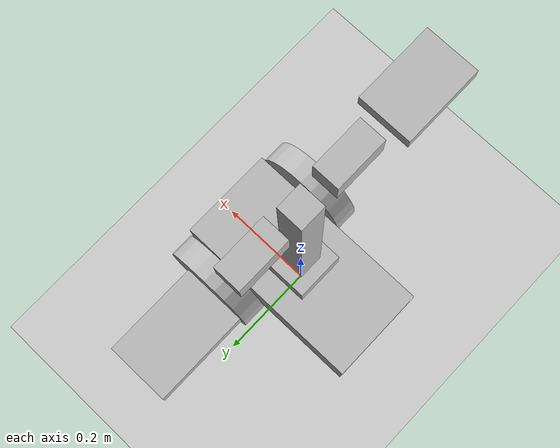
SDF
<?xml version="1.0"?>
<sdf version="1.5">
  <world name="default">
    <gui fullscreen='0'>
      <!-- KEYPUBLISHER SEE: https://github.com/osrf/car_demo/issues/25 -->
      <plugin name='keyboard' filename='libKeyboardGUIPlugin.so'/>
      <camera name='user_camera'>
        <pose frame=''>0.409475 -0.502666 0.529673 0 0.275643 2.35619</pose>
        <view_controller>orbit</view_controller>
        <projection_type>perspective</projection_type>
      </camera>
    </gui>

    <include>
      <uri>model://sun</uri>
    </include>

    <include>
      <uri>model://ground_plane</uri>
    </include>

    <include>
      <pose>0 0 0 0 0 0</pose>
      <uri>model://my_arm_robot</uri>
    </include>
  </world>
</sdf>

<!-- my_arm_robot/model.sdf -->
<sdf version="1.4">
  <model name="my_arm_robot">
    <static>0</static>
    <link name="chassis">
      <pose>0 0 .1 0 0 0</pose>
      <inertial>
        <mass>15</mass>
        <inertia>
          <ixx>6.6666666e-02</ixx>
          <ixy>0</ixy>
          <ixz>0</ixz>
          <iyy>0.226666666666</iyy>
          <iyz>0</iyz>
          <izz>0.26666666666</izz>
        </inertia>
      </inertial>
      <collision name="collision">
        <geometry>
          <box>
            <size>.4 .2 .1</size>
          </box>
        </geometry>
      </collision>
      <visual name="visual">
        <geometry>
          <box>
            <size>.4 .2 .1</size>
          </box>
        </geometry>
      </visual>
      <collision name="caster_collision">
        <pose>-0.15 0 -0.05 0 0 0</pose>
        <geometry>
          <sphere>
            <radius>.05</radius>
          </sphere>
        </geometry>
        <surface>
          <friction>
            <ode>
              <mu>0</mu>
              <mu2>0</mu2>
              <slip1>0</slip1>
              <slip2>0</slip2>
            </ode>
          </friction>
        </surface>
      </collision>
      <visual name="caster_visual">
        <pose>-0.15 0 -0.05 0 0 0</pose>
        <geometry>
          <sphere>
            <radius>.05</radius>
          </sphere>
        </geometry>
      </visual>
    </link>
    <link name="arm1">
      <pose>0 0 .175 0 0 0</pose>
      <inertial>
        <mass>0.5</mass>
        <inertia>
          <ixx>5.20833333333e-04</ixx>
          <ixy>0</ixy>
          <ixz>0</ixz>
          <iyy>5.20833333333e-04</iyy>
          <iyz>0</iyz>
          <izz>8.33333333333e-04</izz>
        </inertia>
      </inertial>
      <collision name="collision">
        <geometry>
          <box>
            <size>.1 .1 .05</size>
          </box>
        </geometry>
      </collision>
      <visual name="visual">
        <geometry>
          <box>
            <size>.1 .1 .05</size>
          </box>
        </geometry>
      </visual>
    </link>
    <link name="arm2">
      <pose>.0 0 .4 0 0 0</pose>
      <inertial>
        <mass>0.5</mass>
        <inertia>
          <ixx>0.7041666667e-02</ixx>
          <ixy>0</ixy>
          <ixz>0</ixz>
          <iyy>0.7041666667e-02</iyy>
          <iyz>0</iyz>
          <izz>2.1666666667e-04</izz>
        </inertia>
      </inertial>
      <collision name="collision">
        <geometry>
          <box>
            <size>.05 .05 .4</size>
          </box>
        </geometry>
      </collision>
      <visual name="visual">
        <geometry>
          <box>
            <size>.05 .05 .4</size>
          </box>
        </geometry>
      </visual>
    </link>
    <link name="hand1">
      <pose>0 .1 .6 0 0 0</pose>
      <inertial>
        <mass>0.2</mass>
        <inertia>
          <ixx>2.60416666667e-04</ixx>
          <ixy>0</ixy>
          <ixz>0</ixz>
          <iyy>1.04166666667e-04</iyy>
          <iyz>0</iyz>
          <izz>2.60416666667e-04</izz>
        </inertia>
      </inertial>
      <collision name="collision">
        <geometry>
          <box>
            <size>.05 .1 .05</size>
          </box>
        </geometry>
      </collision>
      <visual name="visual">
        <geometry>
          <box>
            <size>.05 .1 .05</size>
          </box>
        </geometry>
      </visual>
    </link>
    <link name="hand2">
      <pose>0 -.1 .6 0 0 0</pose>
      <inertial>
        <mass>0.2</mass>
        <inertia>
          <ixx>2.60416666667e-04</ixx>
          <ixy>0</ixy>
          <ixz>0</ixz>
          <iyy>1.04166666667e-04</iyy>
          <iyz>0</iyz>
          <izz>2.60416666667e-04</izz>
        </inertia>
      </inertial>
      <collision name="collision">
        <geometry>
          <box>
            <size>.05 .1 .05</size>
          </box>
        </geometry>
      </collision>
      <visual name="visual">
        <geometry>
          <box>
            <size>.05 .1 .05</size>
          </box>
        </geometry>
      </visual>
    </link>
    <link name="hand1_2">
      <pose>0 .25 .6 0 0 0</pose>
      <inertial>
        <mass>0.2</mass>
        <inertia>
          <ixx>5.78125e-04</ixx>
          <ixy>0</ixy>
          <ixz>0</ixz>
          <iyy>2.65625e-04</iyy>
          <iyz>0</iyz>
          <izz>0.8125e-03</izz>
        </inertia>
      </inertial>
      <collision name="collision">
        <geometry>
          <box>
            <size>.1 .15 .025</size>
          </box>
        </geometry>
      </collision>
      <visual name="visual">
        <geometry>
          <box>
            <size>.1 .15 .025</size>
          </box>
        </geometry>
      </visual>
    </link>
    <link name="hand2_2">
      <pose>0 -.25 .6 0 0 0</pose>
      <inertial>
        <mass>0.2</mass>
        <inertia>
          <ixx>5.78125e-04</ixx>
          <ixy>0</ixy>
          <ixz>0</ixz>
          <iyy>2.65625e-04</iyy>
          <iyz>0</iyz>
          <izz>0.8125e-03</izz>
        </inertia>
      </inertial>
      <collision name="collision">
        <geometry>
          <box>
            <size>.1 .15 .025</size>
          </box>
        </geometry>
      </collision>
      <visual name="visual">
        <geometry>
          <box>
            <size>.1 .15 .025</size>
          </box>
        </geometry>
      </visual>
    </link>
    <link name="left_wheel">
      <pose>0.1 0.13 0.1 0 1.5707 1.5707</pose>
      <inertial>
        <mass>2</mass>
        <inertia>
          <ixx>4.25424005174e-03</ixx>
          <ixy>0</ixy>
          <ixz>0</ixz>
          <iyy>4.25424005174e-03</iyy>
          <iyz>0</iyz>
          <izz>7.85398163397e-03</izz>
        </inertia>
      </inertial>
      <collision name="collision">
        <geometry>
          <cylinder>
            <radius>.1</radius>
            <length>.05</length>
          </cylinder>
        </geometry>
      </collision>
      <visual name="visual">
        <geometry>
          <cylinder>
            <radius>.1</radius>
            <length>.05</length>
          </cylinder>
        </geometry>
      </visual>
    </link>
    <link name="right_wheel">
      <pose>0.1 -0.13 0.1 0 1.5707 1.5707</pose>
      <inertial>
        <mass>2</mass>
        <inertia>
          <ixx>4.25424005174e-03</ixx>
          <ixy>0</ixy>
          <ixz>0</ixz>
          <iyy>4.25424005174e-03</iyy>
          <iyz>0</iyz>
          <izz>7.85398163397e-03</izz>
        </inertia>
      </inertial>
      <collision name="collision">
        <geometry>
          <cylinder>
            <radius>.1</radius>
            <length>.05</length>
          </cylinder>
        </geometry>
      </collision>
      <visual name="visual">
        <geometry>
          <cylinder>
            <radius>.1</radius>
            <length>.05</length>
          </cylinder>
        </geometry>
      </visual>
    </link>
    <!-- =============================== JOINTS for WHEELS ====== -->
    <joint type="revolute" name="left_wheel_hinge">
      <pose>0 0 -0.03 0 0 0</pose>
      <child>left_wheel</child>
      <parent>chassis</parent>
      <axis>
        <xyz>0 1 0</xyz>
      </axis>
    </joint>
    <joint type="revolute" name="right_wheel_hinge">
      <pose>0 0 0.03 0 0 0</pose>
      <child>right_wheel</child>
      <parent>chassis</parent>
      <axis>
        <xyz>0 1 0</xyz>
      </axis>
    </joint>
    <!-- =============================== JOINTS for ARM ====== -->
    <joint type="revolute" name="arm1_hinge">
      <pose>0 0 .15 0 0 0</pose>
      <child>arm1</child>
      <parent>chassis</parent>
      <axis>
        <xyz>0 0 1</xyz>
      </axis>
    </joint>
    <joint type="revolute" name="arm2_hinge">
      <pose>0 0 -.2 0 0 0</pose>
      <child>arm2</child>
      <parent>arm1</parent>
      <axis>
        <xyz>0 1 0</xyz>
      </axis>
    </joint>
    <joint type="revolute" name="hand1_hinge">
      <pose>.03 0 0 0 0 0</pose>
      <child>hand1</child>
      <parent>arm2</parent>
      <axis>
        <xyz>1 0 0</xyz>
      </axis>
    </joint>
    <joint type="revolute" name="hand2_hinge">
      <pose>.03 0 0 0 0 0</pose>
      <child>hand2</child>
      <parent>arm2</parent>
      <axis>
        <xyz>1 0 0</xyz>
      </axis>
    </joint>
    <joint type="revolute" name="hand1_2_hinge">
      <pose>.03 0 0 0 0 0</pose>
      <child>hand1_2</child>
      <parent>hand1</parent>
      <axis>
        <xyz>1 0 0</xyz>
      </axis>
    </joint>
    <joint type="revolute" name="hand2_2_hinge">
      <pose>.03 0 0 0 0 0</pose>
      <child>hand2_2</child>
      <parent>hand2</parent>
      <axis>
        <xyz>1 0 0</xyz>
      </axis>
    </joint>

    <plugin name="differential_drive_controller" filename="libgazebo_ros_diff_drive.so">
      <robotNamespace>my_arm_robot</robotNamespace>
      <alwaysOn>true</alwaysOn>
      <updateRate>100.0</updateRate>
      <leftJoint>left_wheel_hinge</leftJoint>
      <rightJoint>right_wheel_hinge</rightJoint>
      <wheelSeparation>0.4</wheelSeparation>
      <wheelDiameter>0.215</wheelDiameter>
      <robotBaseFrame>chassis</robotBaseFrame>
      <torque>200</torque>
      <commandTopic>cmd_vel</commandTopic>
      <odometryTopic>odom</odometryTopic>
      <odometryFrame>odom</odometryFrame>
      <broadcastTF>true</broadcastTF>
      <legacyMode>1</legacyMode>
    </plugin>

    <plugin name="arm_controller" filename="libmy_arm.so">
      <robotNamespace>my_arm_robot</robotNamespace>
      <alwaysOn>true</alwaysOn>
      <updateRate>100.0</updateRate>
      <commandTopic1>cmd_arm</commandTopic1>
      <commandTopic2>cmd_hand</commandTopic2>
      <shoulderYawJoint>arm1_hinge</shoulderYawJoint>
      <shoulderPitchJoint>arm2_hinge</shoulderPitchJoint>
      <finger1Joint>hand1_hinge</finger1Joint>
      <finger2Joint>hand2_hinge</finger2Joint>
      <finger12Joint>hand1_2_hinge</finger12Joint>
      <finger22Joint>hand2_2_hinge</finger22Joint>
    </plugin>
  </model>
</sdf>
